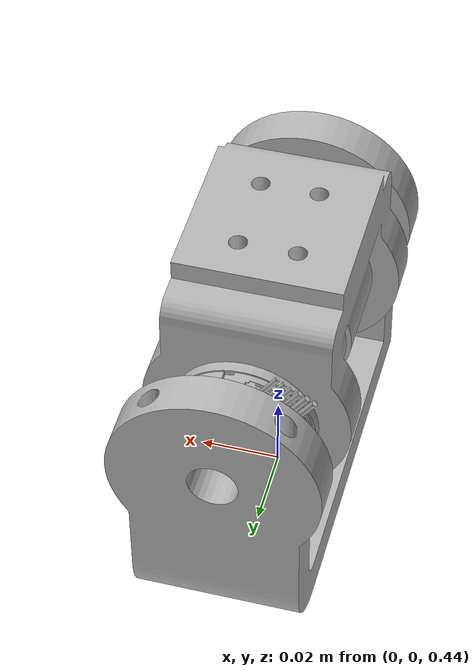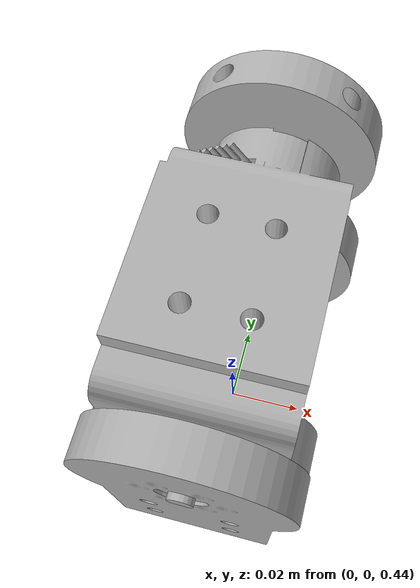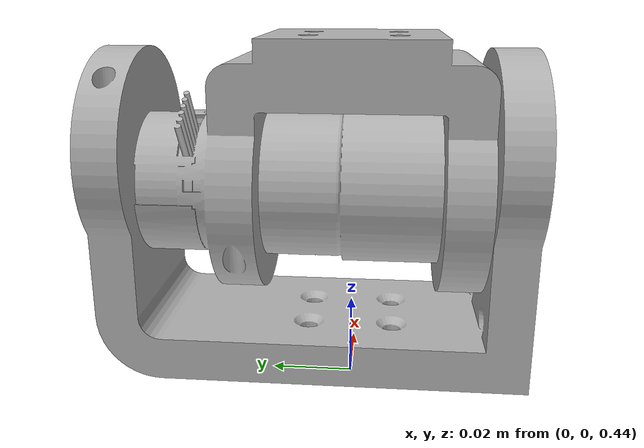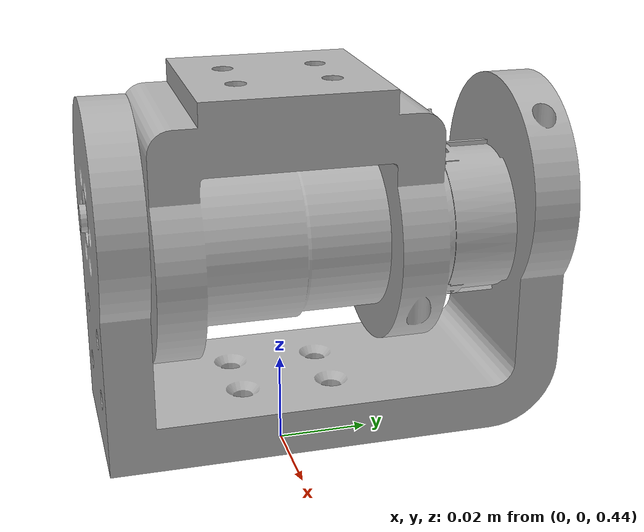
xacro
<?xml version="1.0" ?>
<robot name="robotleg_1_1" xmlns:xacro="http://www.ros.org/wiki/xacro">

<xacro:include filename="$(find robotleg_1_1_description)/urdf/materials.xacro" />
<xacro:include filename="$(find robotleg_1_1_description)/urdf/robotleg_1_1.trans" />
<xacro:include filename="$(find robotleg_1_1_description)/urdf/robotleg_1_1.gazebo" />
<link name="base_link">
  <inertial>
    <origin rpy="0 0 0" xyz="-2.2158107671284978e-05 0.006454942770471819 0.49457307573443965"/>
    <mass value="0.5711992889878322"/>
    <inertia ixx="0.000304" ixy="0.0" ixz="0.0" iyy="0.000161" iyz="1.8e-05" izz="0.000249"/>
  </inertial>
  <visual>
    <origin rpy="0 0 0" xyz="0 0 0"/>
    <geometry>
      <mesh filename="package://robotleg_1_1_description/meshes/base_link.stl" scale="0.001 0.001 0.001"/>
    </geometry>
    <material name="silver"/>
  </visual>
  <collision>
    <origin rpy="0 0 0" xyz="0 0 0"/>
    <geometry>
      <mesh filename="package://robotleg_1_1_description/meshes/base_link.stl" scale="0.001 0.001 0.001"/>
    </geometry>
  </collision>
</link>

<link name="link1_1">
  <inertial>
    <origin rpy="0 0 0" xyz="1.2182193717565268e-05 0.04972607687249734 -0.023971945516487625"/>
    <mass value="0.6861340813991533"/>
    <inertia ixx="0.001354" ixy="-0.0" ixz="0.0" iyy="0.00045" iyz="-2e-06" izz="0.001109"/>
  </inertial>
  <visual>
    <origin rpy="0 0 0" xyz="0.0 0.042 -0.497"/>
    <geometry>
      <mesh filename="package://robotleg_1_1_description/meshes/link1_1.stl" scale="0.001 0.001 0.001"/>
    </geometry>
    <material name="silver"/>
  </visual>
  <collision>
    <origin rpy="0 0 0" xyz="0.0 0.042 -0.497"/>
    <geometry>
      <mesh filename="package://robotleg_1_1_description/meshes/link1_1.stl" scale="0.001 0.001 0.001"/>
    </geometry>
  </collision>
</link>

<joint name="Rev16" type="continuous">
  <origin rpy="0 0 0" xyz="0.0 -0.042 0.497"/>
  <parent link="base_link"/>
  <child link="link1_1"/>
  <axis xyz="0.0 -1.0 0.0"/>
</joint>

</robot>

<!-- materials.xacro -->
<robot name="robotleg_1_1" xmlns:xacro="http://www.ros.org/wiki/xacro" >

<material name="silver">
  <color rgba="0.700 0.700 0.700 1.000"/>
</material>

</robot>

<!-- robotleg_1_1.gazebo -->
<robot name="robotleg_1_1" xmlns:xacro="http://www.ros.org/wiki/xacro" >

<xacro:property name="body_color" value="Gazebo/Silver" />

<gazebo>
  <plugin filename="libgazebo_ros_control.so" name="control"/>
</gazebo>
<gazebo reference="base_link">
  <material>${body_color}</material>
  <mu1>0.2</mu1>
  <mu2>0.2</mu2>
  <selfCollide>true</selfCollide>
  <gravity>true</gravity>
</gazebo>

<gazebo reference="joint_lower_1">
  <material>${body_color}</material>
  <mu1>0.2</mu1>
  <mu2>0.2</mu2>
  <selfCollide>true</selfCollide>
</gazebo>

<gazebo reference="motor_1">
  <material>${body_color}</material>
  <mu1>0.2</mu1>
  <mu2>0.2</mu2>
  <selfCollide>true</selfCollide>
</gazebo>

<gazebo reference="encoder_cap_1">
  <material>${body_color}</material>
  <mu1>0.2</mu1>
  <mu2>0.2</mu2>
  <selfCollide>true</selfCollide>
</gazebo>

<gazebo reference="joint_1">
  <material>${body_color}</material>
  <mu1>0.2</mu1>
  <mu2>0.2</mu2>
  <selfCollide>true</selfCollide>
</gazebo>

<gazebo reference="joint_upper_1">
  <material>${body_color}</material>
  <mu1>0.2</mu1>
  <mu2>0.2</mu2>
  <selfCollide>true</selfCollide>
</gazebo>

<gazebo reference="link1_1">
  <material>${body_color}</material>
  <mu1>0.2</mu1>
  <mu2>0.2</mu2>
  <selfCollide>true</selfCollide>
</gazebo>

</robot>
